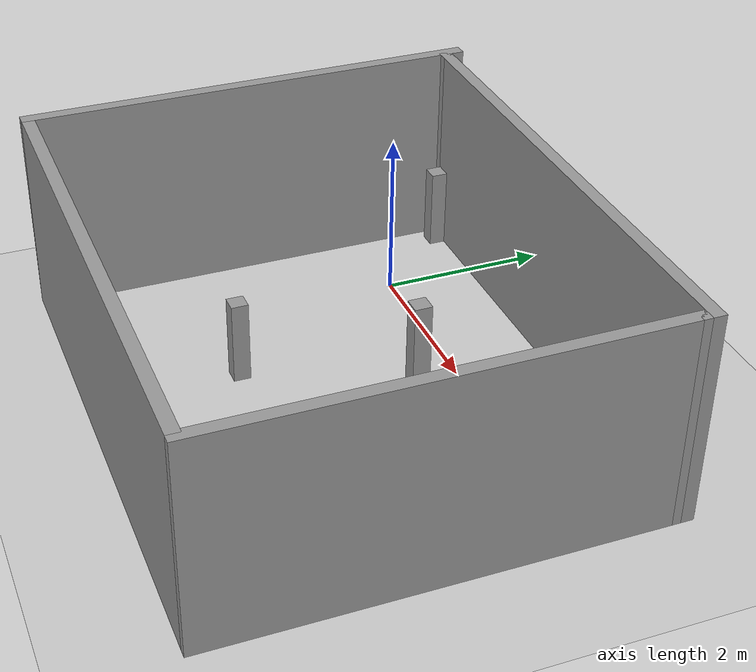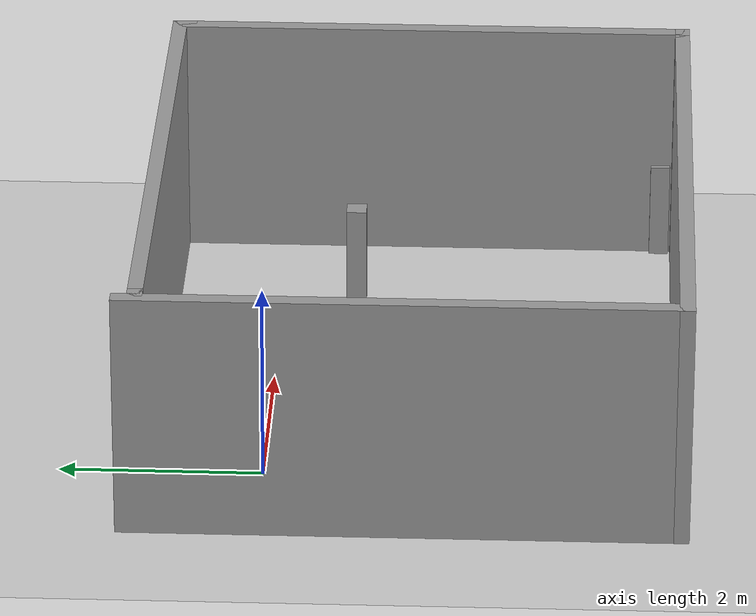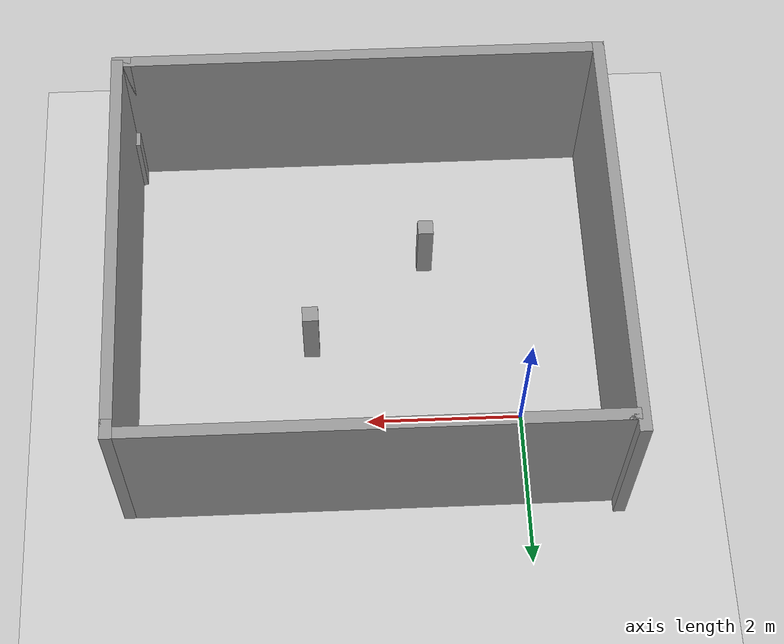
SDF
<sdf version="1.7">
 <world name="default">
  <light name="sun" type="directional">
   <pose>0 0 10 0 -0 0</pose>
   <diffuse>0.8 0.8 0.8 1</diffuse>
   <specular>0.2 0.2 0.2 1</specular>
   <attenuation>
    <range>1000</range>
    <constant>0.9</constant>
    <linear>0.01</linear>
    <quadratic>0.001</quadratic>
   </attenuation>
   <direction>-0.5 0.1 -0.9</direction>
   <spot><inner_angle>0</inner_angle><outer_angle>0</outer_angle><falloff>0</falloff></spot>
  </light>
  <model name="ground_plane">
   <static>1</static>
   <link name="link">
    <collision name="collision">
     <geometry><plane><normal>0 0 1</normal><size>100 100</size></plane></geometry>
     <surface>
      <contact><collide_bitmask>65535</collide_bitmask></contact>
      <friction><ode><mu>100</mu><mu2>50</mu2></ode></friction>
     </surface>
    </collision>
    <visual name="visual">
     <cast_shadows>0</cast_shadows>
     <geometry><plane><normal>0 0 1</normal><size>100 100</size></plane></geometry>
     <material>
      <script><uri>file://media/materials/scripts/gazebo.material</uri><name>Gazebo/Grey</name></script>
     </material>
    </visual>
   </link>
  </model>
  <gravity>0 0 -9.8</gravity>
  <magnetic_field>6e-06 2.3e-05 -4.2e-05</magnetic_field>
  <atmosphere type="adiabatic"/>
  <physics type="ode">
   <max_step_size>0.001</max_step_size>
   <real_time_factor>1</real_time_factor>
   <real_time_update_rate>1000</real_time_update_rate>
  </physics>
  <scene><ambient>0.4 0.4 0.4 1</ambient><background>0.7 0.7 0.7 1</background><shadows>1</shadows></scene>
  <spherical_coordinates>
   <surface_model>EARTH_WGS84</surface_model>
   <latitude_deg>0</latitude_deg>
   <longitude_deg>0</longitude_deg>
   <elevation>0</elevation>
   <heading_deg>0</heading_deg>
  </spherical_coordinates>
  <model name="Untitled5">
   <pose>3.09431 -1.3888 0 0 -0 0</pose>
   <link name="Wall_10">
    <collision name="Wall_10_Collision">
     <geometry><box><size>6.25 0.15 2.5</size></box></geometry>
     <pose>0 0 1.25 0 -0 0</pose>
    </collision>
    <visual name="Wall_10_Visual">
     <pose>0 0 1.25 0 -0 0</pose>
     <geometry><box><size>6.25 0.15 2.5</size></box></geometry>
     <material>
      <script><uri>file://media/materials/scripts/gazebo.material</uri><name>Gazebo/Grey</name></script>
      <ambient>1 1 1 1</ambient>
     </material>
     <meta><layer>0</layer></meta>
    </visual>
    <pose>-1.18411 -2.675 0 0 -0 0</pose>
   </link>
   <link name="Wall_11">
    <collision name="Wall_11_Collision">
     <geometry><box><size>0.25 0.15 2.5</size></box></geometry>
     <pose>0 0 1.25 0 -0 0</pose>
    </collision>
    <visual name="Wall_11_Visual">
     <pose>0 0 1.25 0 -0 0</pose>
     <geometry><box><size>0.25 0.15 2.5</size></box></geometry>
     <material>
      <script><uri>file://media/materials/scripts/gazebo.material</uri><name>Gazebo/Grey</name></script>
      <ambient>1 1 1 1</ambient>
     </material>
     <meta><layer>0</layer></meta>
    </visual>
    <pose>1.91589 -2.675 0 0 -0 0</pose>
   </link>
   <link name="Wall_12">
    <collision name="Wall_12_Collision">
     <geometry><box><size>5.25 0.15 2.5</size></box></geometry>
     <pose>0 0 1.25 0 -0 0</pose>
    </collision>
    <visual name="Wall_12_Visual">
     <pose>0 0 1.25 0 -0 0</pose>
     <geometry><box><size>5.25 0.15 2.5</size></box></geometry>
     <material>
      <script><uri>file://media/materials/scripts/gazebo.material</uri><name>Gazebo/Grey</name></script>
      <ambient>1 1 1 1</ambient>
     </material>
     <meta><layer>0</layer></meta>
    </visual>
    <pose>1.96589 -0.125 0 0 -0 1.5708</pose>
   </link>
   <link name="Wall_13">
    <collision name="Wall_13_Collision">
     <geometry><box><size>0.25 0.15 2.5</size></box></geometry>
     <pose>0 0 1.25 0 -0 0</pose>
    </collision>
    <visual name="Wall_13_Visual">
     <pose>0 0 1.25 0 -0 0</pose>
     <geometry><box><size>0.25 0.15 2.5</size></box></geometry>
     <material>
      <script><uri>file://media/materials/scripts/gazebo.material</uri><name>Gazebo/Grey</name></script>
      <ambient>1 1 1 1</ambient>
     </material>
     <meta><layer>0</layer></meta>
    </visual>
    <pose>1.96589 2.475 0 0 -0 1.5708</pose>
   </link>
   <link name="Wall_14">
    <collision name="Wall_14_Collision">
     <geometry><box><size>6.25 0.15 2.5</size></box></geometry>
     <pose>0 0 1.25 0 -0 0</pose>
    </collision>
    <visual name="Wall_14_Visual">
     <pose>0 0 1.25 0 -0 0</pose>
     <geometry><box><size>6.25 0.15 2.5</size></box></geometry>
     <material>
      <script><uri>file://media/materials/scripts/gazebo.material</uri><name>Gazebo/Grey</name></script>
      <ambient>1 1 1 1</ambient>
     </material>
     <meta><layer>0</layer></meta>
    </visual>
    <pose>-1.08411 2.525 0 0 -0 3.14159</pose>
   </link>
   <link name="Wall_15">
    <collision name="Wall_15_Collision">
     <geometry><box><size>0.15 0.15 2.5</size></box></geometry>
     <pose>0 0 1.25 0 -0 0</pose>
    </collision>
    <visual name="Wall_15_Visual">
     <pose>0 0 1.25 0 -0 0</pose>
     <geometry><box><size>0.15 0.15 2.5</size></box></geometry>
     <material>
      <script><uri>file://media/materials/scripts/gazebo.material</uri><name>Gazebo/Grey</name></script>
      <ambient>1 1 1 1</ambient>
     </material>
     <meta><layer>0</layer></meta>
    </visual>
    <pose>-4.13411 2.525 0 0 -0 0</pose>
   </link>
   <link name="Wall_17">
    <collision name="Wall_17_Collision">
     <geometry><box><size>5.5 0.15 2.5</size></box></geometry>
     <pose>0 0 1.25 0 -0 0</pose>
    </collision>
    <visual name="Wall_17_Visual">
     <pose>0 0 1.25 0 -0 0</pose>
     <geometry><box><size>5.5 0.15 2.5</size></box></geometry>
     <material>
      <script><uri>file://media/materials/scripts/gazebo.material</uri><name>Gazebo/Grey</name></script>
      <ambient>1 1 1 1</ambient>
     </material>
     <meta><layer>0</layer></meta>
    </visual>
    <pose>-4.23411 0 0 0 -0 1.5708</pose>
   </link>
   <static>1</static>
  </model>
  <model name="trial2">
   <link name="link_clone">
    <inertial>
     <mass>1</mass>
     <inertia>
      <ixx>0.166667</ixx>
      <ixy>0</ixy>
      <ixz>0</ixz>
      <iyy>0.166667</iyy>
      <iyz>0</iyz>
      <izz>0.166667</izz>
     </inertia>
    </inertial>
    <pose>0.389404 0.882889 1.12949 0 -1e-05 0</pose>
    <visual name="visual">
     <geometry><box><size>0.2 0.2 1</size></box></geometry>
     <material>
      <script><name>Gazebo/Grey</name><uri>file://media/materials/scripts/gazebo.material</uri></script>
      <shader type="pixel"><normal_map>__default__</normal_map></shader>
      <ambient>0.3 0.3 0.3 1</ambient>
      <diffuse>0.7 0.7 0.7 1</diffuse>
      <specular>0.01 0.01 0.01 1</specular>
      <emissive>0 0 0 1</emissive>
     </material>
    </visual>
    <collision name="collision">
     <geometry><box><size>0.2 0.2 1</size></box></geometry>
     <surface>
      <friction>
       <ode><mu>1</mu><mu2>1</mu2><fdir1>0 0 0</fdir1><slip1>0</slip1><slip2>0</slip2></ode>
       <torsional>
        <coefficient>1</coefficient>
        <patch_radius>0</patch_radius>
        <surface_radius>0</surface_radius>
        <use_patch_radius>1</use_patch_radius>
        <ode><slip>0</slip></ode>
       </torsional>
      </friction>
      <bounce><restitution_coefficient>0</restitution_coefficient><threshold>1e+06</threshold></bounce>
      <contact>
       <collide_without_contact>0</collide_without_contact>
       <collide_without_contact_bitmask>1</collide_without_contact_bitmask>
       <collide_bitmask>1</collide_bitmask>
       <ode>
        <soft_cfm>0</soft_cfm>
        <soft_erp>0.2</soft_erp>
        <kp>1e+13</kp>
        <kd>1</kd>
        <max_vel>0.01</max_vel>
        <min_depth>0</min_depth>
       </ode>
       <bullet>
        <split_impulse>1</split_impulse>
        <split_impulse_penetration_threshold>-0.01</split_impulse_penetration_threshold>
        <soft_cfm>0</soft_cfm>
        <soft_erp>0.2</soft_erp>
        <kp>1e+13</kp>
        <kd>1</kd>
       </bullet>
      </contact>
     </surface>
    </collision>
   </link>
   <link name="link_clone_clone">
    <inertial>
     <mass>1</mass>
     <inertia>
      <ixx>0.166667</ixx>
      <ixy>0</ixy>
      <ixz>0</ixz>
      <iyy>0.166667</iyy>
      <iyz>0</iyz>
      <izz>0.166667</izz>
     </inertia>
    </inertial>
    <pose>-1.15539 -0.651866 0.553741 0 -1e-05 0</pose>
    <visual name="visual">
     <geometry><box><size>0.2 0.2 1</size></box></geometry>
     <material>
      <script><name>Gazebo/Grey</name><uri>file://media/materials/scripts/gazebo.material</uri></script>
      <shader type="pixel"><normal_map>__default__</normal_map></shader>
      <ambient>0.3 0.3 0.3 1</ambient>
      <diffuse>0.7 0.7 0.7 1</diffuse>
      <specular>0.01 0.01 0.01 1</specular>
      <emissive>0 0 0 1</emissive>
     </material>
    </visual>
    <collision name="collision">
     <geometry><box><size>0.2 0.2 1</size></box></geometry>
     <surface>
      <friction>
       <ode><mu>1</mu><mu2>1</mu2><fdir1>0 0 0</fdir1><slip1>0</slip1><slip2>0</slip2></ode>
       <torsional>
        <coefficient>1</coefficient>
        <patch_radius>0</patch_radius>
        <surface_radius>0</surface_radius>
        <use_patch_radius>1</use_patch_radius>
        <ode><slip>0</slip></ode>
       </torsional>
      </friction>
      <bounce><restitution_coefficient>0</restitution_coefficient><threshold>1e+06</threshold></bounce>
      <contact>
       <collide_without_contact>0</collide_without_contact>
       <collide_without_contact_bitmask>1</collide_without_contact_bitmask>
       <collide_bitmask>1</collide_bitmask>
       <ode>
        <soft_cfm>0</soft_cfm>
        <soft_erp>0.2</soft_erp>
        <kp>1e+13</kp>
        <kd>1</kd>
        <max_vel>0.01</max_vel>
        <min_depth>0</min_depth>
       </ode>
       <bullet>
        <split_impulse>1</split_impulse>
        <split_impulse_penetration_threshold>-0.01</split_impulse_penetration_threshold>
        <soft_cfm>0</soft_cfm>
        <soft_erp>0.2</soft_erp>
        <kp>1e+13</kp>
        <kd>1</kd>
       </bullet>
      </contact>
     </surface>
    </collision>
   </link>
   <link name="link_clone_clone_0">
    <inertial>
     <mass>1</mass>
     <inertia>
      <ixx>0.166667</ixx>
      <ixy>0</ixy>
      <ixz>0</ixz>
      <iyy>0.166667</iyy>
      <iyz>0</iyz>
      <izz>0.166667</izz>
     </inertia>
    </inertial>
    <pose>-3.14636 2.64789 0.553746 0 -1e-05 0</pose>
    <visual name="visual">
     <geometry><box><size>0.2 0.2 1</size></box></geometry>
     <material>
      <script><name>Gazebo/Grey</name><uri>file://media/materials/scripts/gazebo.material</uri></script>
      <shader type="pixel"><normal_map>__default__</normal_map></shader>
      <ambient>0.3 0.3 0.3 1</ambient>
      <diffuse>0.7 0.7 0.7 1</diffuse>
      <specular>0.01 0.01 0.01 1</specular>
      <emissive>0 0 0 1</emissive>
     </material>
    </visual>
    <collision name="collision">
     <geometry><box><size>0.2 0.2 1</size></box></geometry>
     <surface>
      <friction>
       <ode><mu>1</mu><mu2>1</mu2><fdir1>0 0 0</fdir1><slip1>0</slip1><slip2>0</slip2></ode>
       <torsional>
        <coefficient>1</coefficient>
        <patch_radius>0</patch_radius>
        <surface_radius>0</surface_radius>
        <use_patch_radius>1</use_patch_radius>
        <ode><slip>0</slip></ode>
       </torsional>
      </friction>
      <bounce><restitution_coefficient>0</restitution_coefficient><threshold>1e+06</threshold></bounce>
      <contact>
       <collide_without_contact>0</collide_without_contact>
       <collide_without_contact_bitmask>1</collide_without_contact_bitmask>
       <collide_bitmask>1</collide_bitmask>
       <ode>
        <soft_cfm>0</soft_cfm>
        <soft_erp>0.2</soft_erp>
        <kp>1e+13</kp>
        <kd>1</kd>
        <max_vel>0.01</max_vel>
        <min_depth>0</min_depth>
       </ode>
       <bullet>
        <split_impulse>1</split_impulse>
        <split_impulse_penetration_threshold>-0.01</split_impulse_penetration_threshold>
        <soft_cfm>0</soft_cfm>
        <soft_erp>0.2</soft_erp>
        <kp>1e+13</kp>
        <kd>1</kd>
       </bullet>
      </contact>
     </surface>
    </collision>
   </link>
   <link name="link_clone_clone_1">
    <inertial>
     <mass>1</mass>
     <inertia>
      <ixx>0.166667</ixx>
      <ixy>0</ixy>
      <ixz>0</ixz>
      <iyy>0.166667</iyy>
      <iyz>0</iyz>
      <izz>0.166667</izz>
     </inertia>
    </inertial>
    <pose>2.72603 -2.19076 0.553748 0 -1e-05 0</pose>
    <visual name="visual">
     <geometry><box><size>0.2 0.2 1</size></box></geometry>
     <material>
      <script><name>Gazebo/Grey</name><uri>file://media/materials/scripts/gazebo.material</uri></script>
      <shader type="pixel"><normal_map>__default__</normal_map></shader>
      <ambient>0.3 0.3 0.3 1</ambient>
      <diffuse>0.7 0.7 0.7 1</diffuse>
      <specular>0.01 0.01 0.01 1</specular>
      <emissive>0 0 0 1</emissive>
     </material>
    </visual>
    <collision name="collision">
     <geometry><box><size>0.2 0.2 1</size></box></geometry>
     <surface>
      <friction>
       <ode><mu>1</mu><mu2>1</mu2><fdir1>0 0 0</fdir1><slip1>0</slip1><slip2>0</slip2></ode>
       <torsional>
        <coefficient>1</coefficient>
        <patch_radius>0</patch_radius>
        <surface_radius>0</surface_radius>
        <use_patch_radius>1</use_patch_radius>
        <ode><slip>0</slip></ode>
       </torsional>
      </friction>
      <bounce><restitution_coefficient>0</restitution_coefficient><threshold>1e+06</threshold></bounce>
      <contact>
       <collide_without_contact>0</collide_without_contact>
       <collide_without_contact_bitmask>1</collide_without_contact_bitmask>
       <collide_bitmask>1</collide_bitmask>
       <ode>
        <soft_cfm>0</soft_cfm>
        <soft_erp>0.2</soft_erp>
        <kp>1e+13</kp>
        <kd>1</kd>
        <max_vel>0.01</max_vel>
        <min_depth>0</min_depth>
       </ode>
       <bullet>
        <split_impulse>1</split_impulse>
        <split_impulse_penetration_threshold>-0.01</split_impulse_penetration_threshold>
        <soft_cfm>0</soft_cfm>
        <soft_erp>0.2</soft_erp>
        <kp>1e+13</kp>
        <kd>1</kd>
       </bullet>
      </contact>
     </surface>
    </collision>
   </link>
   <static>0</static>
   <pose>2.30103 -1.68098 -0.053744 1e-06 9e-06 4.6e-05</pose>
  </model>
 </world>
</sdf>
